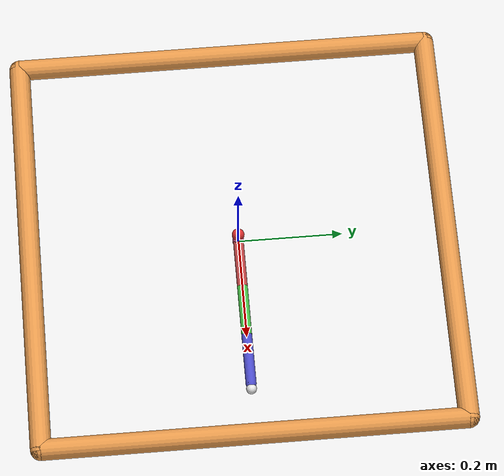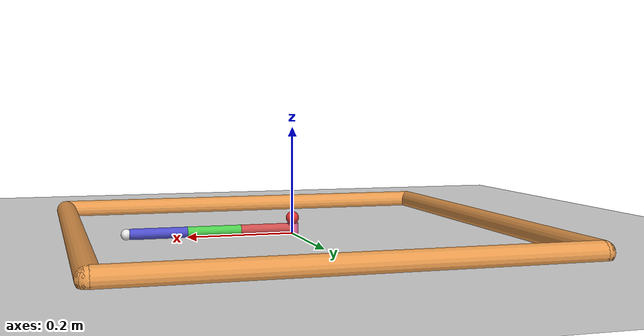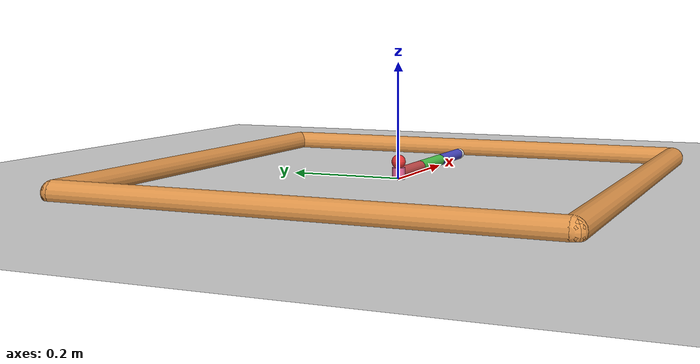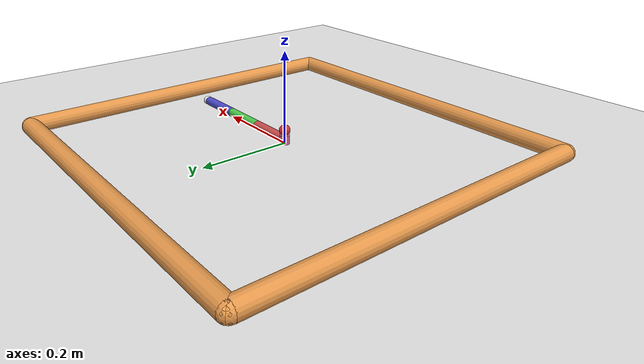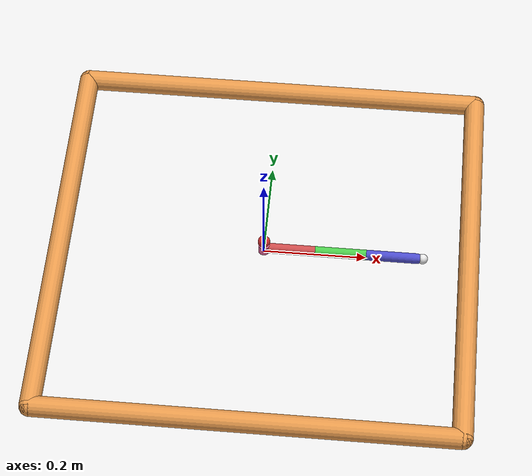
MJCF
<mujoco model="reacher">
	<compiler angle="radian" inertiafromgeom="true"/>
	<default>
		<joint armature="1" damping="1" limited="true"/>
		<geom contype="0" friction="1 0.1 0.1" rgba="0.7 0.7 0 1"/>
	</default>
	<option gravity="0 0 -9.81" integrator="RK4" timestep="0.01"/>
	<worldbody>
		<!-- Arena -->
		<geom conaffinity="0" contype="0" name="ground" pos="0 0 0" rgba="0.9 0.9 0.9 1" size="1.2 1.2 10" type="plane"/>
		<geom conaffinity="0" fromto="-.4 -.4 .01 .4 -.4 .01" name="sideS" rgba="0.9 0.6 0.3 1" size=".02" type="capsule"/>
		<geom conaffinity="0" fromto=" .4 -.4 .01 .4  .4 .01" name="sideE" rgba="0.9 0.6 0.3 1" size=".02" type="capsule"/>
		<geom conaffinity="0" fromto="-.4  .4 .01 .4  .4 .01" name="sideN" rgba="0.9 0.6 0.3 1" size=".02" type="capsule"/>
		<geom conaffinity="0" fromto="-.4 -.4 .01 -.4 .4 .01" name="sideW" rgba="0.9 0.6 0.3 1" size=".02" type="capsule"/>
		<!-- Arm -->
		<geom conaffinity="0" contype="0" fromto="0 0 0 0 0 0.02" name="root" rgba="0.9 0.4 0.6 1" size=".011" type="cylinder"/>
		<body name="body0" pos="0 0 .01">
			<geom fromto="0 0 0 0.1 0 0" name="link0" rgba="0.8 0.3 0.3 1" size=".01" type="capsule"/>
			<joint axis="0 0 1" limited="false" name="joint0" pos="0 0 0" type="hinge"/>
			<body name="body1" pos="0.1 0 0">
                <geom fromto="0 0 0 0.1 0 0" name="link1" rgba="0.3 0.8 0.3 1" size=".01" type="capsule"/>
                <joint axis="0 0 1" limited="false" name="joint1" pos="0 0 0" type="hinge"/>
                <body name="body2" pos="0.1 0 0">
                    <joint axis="0 0 1" limited="true" name="joint2" pos="0 0 0" range="-5.0 3.0" type="hinge"/>
                    <geom fromto="0 0 0 0.1 0 0" name="link2" rgba="0.3 0.3 0.8 1" size=".01" type="capsule"/>
                    <body name="fingertip" pos="0.11 0 0">
                        <geom contype="0" name="fingertip" pos="0 0 0" rgba="0.9 0.9 0.9 1" size=".01" type="sphere"/>
				    </body>
			    </body>
			</body>
		</body>
		<!-- Target -->
		<geom conaffinity="0" name="target" pos="0 0 0.03" rgba="0.9 0.2 0.2 1" size=".012" type="sphere"/>
	</worldbody>
	<actuator>
		<motor ctrllimited="true" ctrlrange="-1.0 1.0" gear="200.0" joint="joint0"/>
		<motor ctrllimited="true" ctrlrange="-1.0 1.0" gear="200.0" joint="joint1"/>
		<motor ctrllimited="true" ctrlrange="-1.0 1.0" gear="200.0" joint="joint2"/>
	</actuator>
</mujoco>
